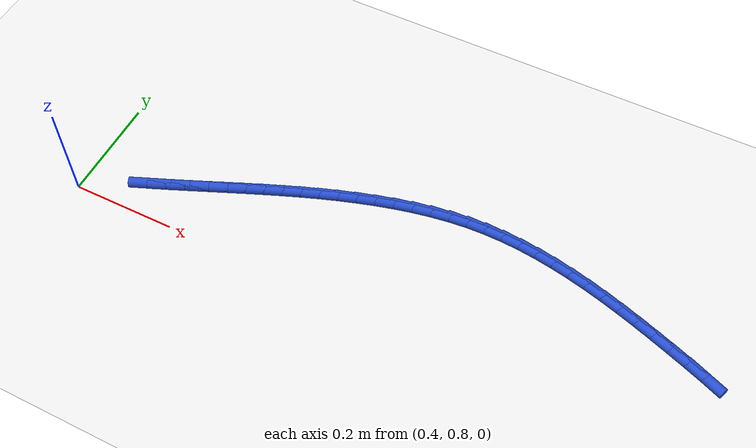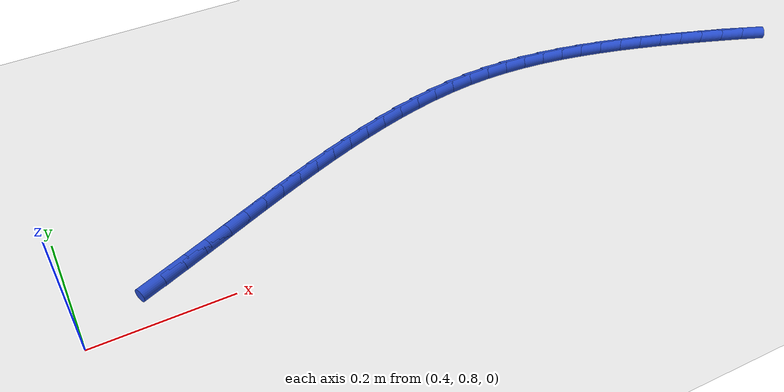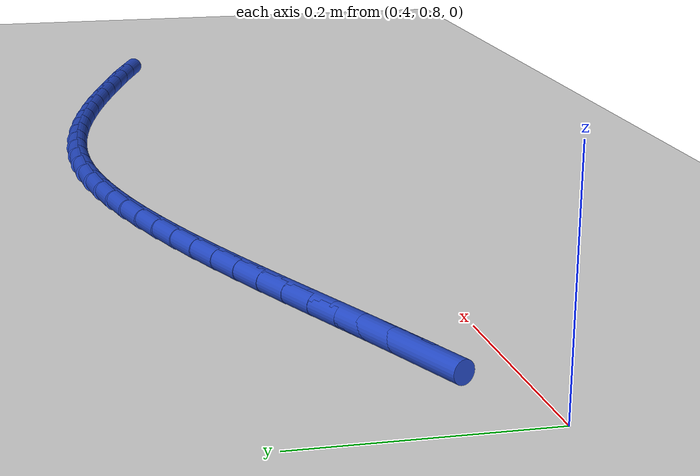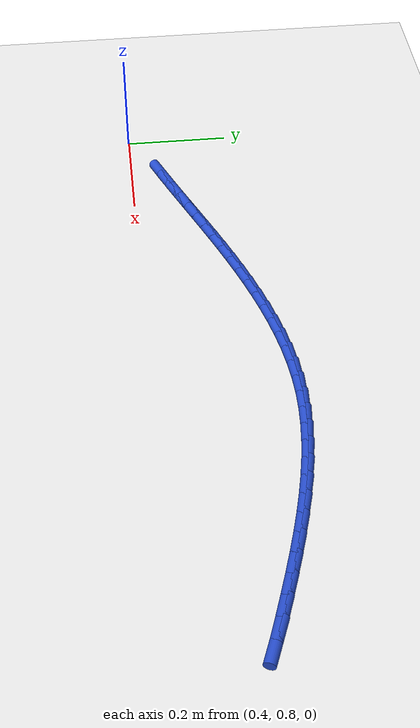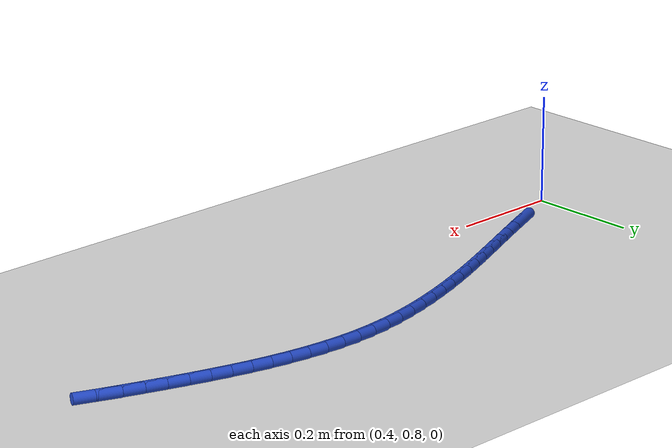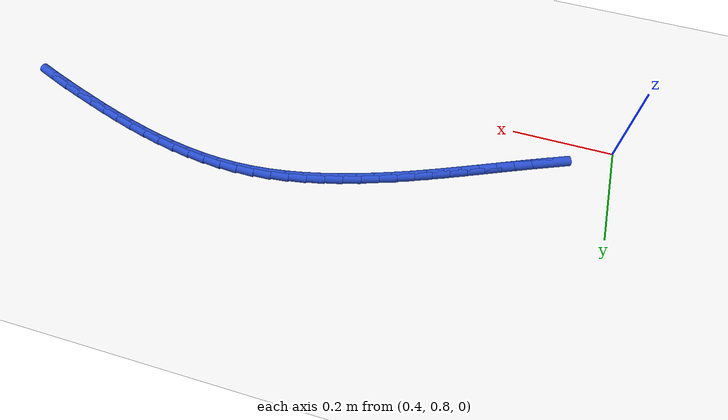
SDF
<sdf version="1.6">
 <world name="default">
  <model name="ground_plane">
   <static>1</static>
   <link name="link">
    <collision name="collision">
     <geometry><plane><normal>0 0 1</normal><size>100 100</size></plane></geometry>
     <surface><friction><ode><mu>100</mu><mu2>50</mu2></ode></friction></surface>
    </collision>
    <visual name="visual">
     <cast_shadows>0</cast_shadows>
     <geometry><plane><normal>0 0 1</normal><size>100 100</size></plane></geometry>
     <material>
      <script><uri>file://media/materials/scripts/gazebo.material</uri><name>Gazebo/WhiteGlow</name></script>
     </material>
    </visual>
   </link>
  </model>
  <model name="line">
   <link name="link_31">
    <pose>0.5207246611274198 0.8618990569873597 0.01 0 1.57 0.39394718605487383</pose>
    <collision name="collision">
     <geometry><cylinder><radius>0.01</radius><length>0.08</length></cylinder></geometry>
    </collision>
    <visual name="visual">
     <material>
      <script><name>Gazebo/Blue</name><uri>file://media/materials/scripts/gazebo.material</uri></script>
     </material>
     <geometry><cylinder><radius>0.01</radius><length>0.08</length></cylinder></geometry>
    </visual>
   </link>
   <link name="link_32">
    <pose>0.5536025665972087 0.8755656317871592 0.01 0 1.57 0.40204795960847106</pose>
    <collision name="collision">
     <geometry><cylinder><radius>0.01</radius><length>0.08</length></cylinder></geometry>
    </collision>
    <visual name="visual">
     <material>
      <script><name>Gazebo/Blue</name><uri>file://media/materials/scripts/gazebo.material</uri></script>
     </material>
     <geometry><cylinder><radius>0.01</radius><length>0.08</length></cylinder></geometry>
    </visual>
   </link>
   <link name="link_33">
    <pose>0.5861413446970477 0.8894014246340826 0.01 0 1.57 0.4068142637108959</pose>
    <collision name="collision">
     <geometry><cylinder><radius>0.01</radius><length>0.08</length></cylinder></geometry>
    </collision>
    <visual name="visual">
     <material>
      <script><name>Gazebo/Blue</name><uri>file://media/materials/scripts/gazebo.material</uri></script>
     </material>
     <geometry><cylinder><radius>0.01</radius><length>0.08</length></cylinder></geometry>
    </visual>
   </link>
   <link name="link_34">
    <pose>0.6184238940323642 0.9033103252896527 0.01 0 1.57 0.40817089300165244</pose>
    <collision name="collision">
     <geometry><cylinder><radius>0.01</radius><length>0.08</length></cylinder></geometry>
    </collision>
    <visual name="visual">
     <material>
      <script><name>Gazebo/Blue</name><uri>file://media/materials/scripts/gazebo.material</uri></script>
     </material>
     <geometry><cylinder><radius>0.01</radius><length>0.08</length></cylinder></geometry>
    </visual>
   </link>
   <link name="link_35">
    <pose>0.6505331132085849 0.9171962235153922 0.01 0 1.57 0.4060639736785271</pose>
    <collision name="collision">
     <geometry><cylinder><radius>0.01</radius><length>0.08</length></cylinder></geometry>
    </collision>
    <visual name="visual">
     <material>
      <script><name>Gazebo/Blue</name><uri>file://media/materials/scripts/gazebo.material</uri></script>
     </material>
     <geometry><cylinder><radius>0.01</radius><length>0.08</length></cylinder></geometry>
    </visual>
   </link>
   <link name="link_36">
    <pose>0.6825519008311373 0.9309630090728247 0.01 0 1.57 0.4004616030045988</pose>
    <collision name="collision">
     <geometry><cylinder><radius>0.01</radius><length>0.08</length></cylinder></geometry>
    </collision>
    <visual name="visual">
     <material>
      <script><name>Gazebo/Blue</name><uri>file://media/materials/scripts/gazebo.material</uri></script>
     </material>
     <geometry><cylinder><radius>0.01</radius><length>0.08</length></cylinder></geometry>
    </visual>
   </link>
   <link name="link_37">
    <pose>0.7145631555054484 0.944514571723473 0.01 0 1.57 0.39135538824786836</pose>
    <collision name="collision">
     <geometry><cylinder><radius>0.01</radius><length>0.08</length></cylinder></geometry>
    </collision>
    <visual name="visual">
     <material>
      <script><name>Gazebo/Blue</name><uri>file://media/materials/scripts/gazebo.material</uri></script>
     </material>
     <geometry><cylinder><radius>0.01</radius><length>0.08</length></cylinder></geometry>
    </visual>
   </link>
   <link name="link_38">
    <pose>0.7466497758369455 0.9577548012288601 0.01 0 1.57 0.3787629009597183</pose>
    <collision name="collision">
     <geometry><cylinder><radius>0.01</radius><length>0.08</length></cylinder></geometry>
    </collision>
    <visual name="visual">
     <material>
      <script><name>Gazebo/Blue</name><uri>file://media/materials/scripts/gazebo.material</uri></script>
     </material>
     <geometry><cylinder><radius>0.01</radius><length>0.08</length></cylinder></geometry>
    </visual>
   </link>
   <link name="link_39">
    <pose>0.7788946604310563 0.9705875873505094 0.01 0 1.57 0.3627309471428266</pose>
    <collision name="collision">
     <geometry><cylinder><radius>0.01</radius><length>0.08</length></cylinder></geometry>
    </collision>
    <visual name="visual">
     <material>
      <script><name>Gazebo/Blue</name><uri>file://media/materials/scripts/gazebo.material</uri></script>
     </material>
     <geometry><cylinder><radius>0.01</radius><length>0.08</length></cylinder></geometry>
    </visual>
   </link>
   <link name="link_40">
    <pose>0.8113807078932072 0.9829168198499435 0.01 0 1.57 0.34333942229906256</pose>
    <collision name="collision">
     <geometry><cylinder><radius>0.01</radius><length>0.08</length></cylinder></geometry>
    </collision>
    <visual name="visual">
     <material>
      <script><name>Gazebo/Blue</name><uri>file://media/materials/scripts/gazebo.material</uri></script>
     </material>
     <geometry><cylinder><radius>0.01</radius><length>0.08</length></cylinder></geometry>
    </visual>
   </link>
   <link name="link_41">
    <pose>0.8441908168288261 0.994646388488686 0.01 0 1.57 0.3207053779769576</pose>
    <collision name="collision">
     <geometry><cylinder><radius>0.01</radius><length>0.08</length></cylinder></geometry>
    </collision>
    <visual name="visual">
     <material>
      <script><name>Gazebo/Blue</name><uri>file://media/materials/scripts/gazebo.material</uri></script>
     </material>
     <geometry><cylinder><radius>0.01</radius><length>0.08</length></cylinder></geometry>
    </visual>
   </link>
   <link name="link_42">
    <pose>0.8774078858433402 1.00568018302826 0.01 0 1.57 0.29482234900867565</pose>
    <collision name="collision">
     <geometry><cylinder><radius>0.01</radius><length>0.08</length></cylinder></geometry>
    </collision>
    <visual name="visual">
     <material>
      <script><name>Gazebo/Blue</name><uri>file://media/materials/scripts/gazebo.material</uri></script>
     </material>
     <geometry><cylinder><radius>0.01</radius><length>0.08</length></cylinder></geometry>
    </visual>
   </link>
   <link name="link_43">
    <pose>0.9110902130092232 1.0159085686106593 0.01 0 1.57 0.26489532597117177</pose>
    <collision name="collision">
     <geometry><cylinder><radius>0.01</radius><length>0.08</length></cylinder></geometry>
    </collision>
    <visual name="visual">
     <material>
      <script><name>Gazebo/Blue</name><uri>file://media/materials/scripts/gazebo.material</uri></script>
     </material>
     <geometry><cylinder><radius>0.01</radius><length>0.08</length></cylinder></geometry>
    </visual>
   </link>
   <link name="link_44">
    <pose>0.945172915394058 1.0251541892342952 0.01 0 1.57 0.23040157071232448</pose>
    <collision name="collision">
     <geometry><cylinder><radius>0.01</radius><length>0.08</length></cylinder></geometry>
    </collision>
    <visual name="visual">
     <material>
      <script><name>Gazebo/Blue</name><uri>file://media/materials/scripts/gazebo.material</uri></script>
     </material>
     <geometry><cylinder><radius>0.01</radius><length>0.08</length></cylinder></geometry>
    </visual>
   </link>
   <link name="link_45">
    <pose>0.9795526351108578 1.0332185365460047 0.01 0 1.57 0.19098760197456974</pose>
    <collision name="collision">
     <geometry><cylinder><radius>0.01</radius><length>0.08</length></cylinder></geometry>
    </collision>
    <visual name="visual">
     <material>
      <script><name>Gazebo/Blue</name><uri>file://media/materials/scripts/gazebo.material</uri></script>
     </material>
     <geometry><cylinder><radius>0.01</radius><length>0.08</length></cylinder></geometry>
    </visual>
   </link>
   <link name="link_46">
    <pose>1.014126001371406 1.039903095099924 0.01 0 1.57 0.1462567880832043</pose>
    <collision name="collision">
     <geometry><cylinder><radius>0.01</radius><length>0.08</length></cylinder></geometry>
    </collision>
    <visual name="visual">
     <material>
      <script><name>Gazebo/Blue</name><uri>file://media/materials/scripts/gazebo.material</uri></script>
     </material>
     <geometry><cylinder><radius>0.01</radius><length>0.08</length></cylinder></geometry>
    </visual>
   </link>
   <link name="link_47">
    <pose>1.0487896433874848 1.045009349450188 0.01 0 1.57 0.09579198619954958</pose>
    <collision name="collision">
     <geometry><cylinder><radius>0.01</radius><length>0.08</length></cylinder></geometry>
    </collision>
    <visual name="visual">
     <material>
      <script><name>Gazebo/Blue</name><uri>file://media/materials/scripts/gazebo.material</uri></script>
     </material>
     <geometry><cylinder><radius>0.01</radius><length>0.08</length></cylinder></geometry>
    </visual>
   </link>
   <link name="link_48">
    <pose>1.0834401903708775 1.0483387841509324 0.01 0 1.57 0.03996815017787153</pose>
    <collision name="collision">
     <geometry><cylinder><radius>0.01</radius><length>0.08</length></cylinder></geometry>
    </collision>
    <visual name="visual">
     <material>
      <script><name>Gazebo/Blue</name><uri>file://media/materials/scripts/gazebo.material</uri></script>
     </material>
     <geometry><cylinder><radius>0.01</radius><length>0.08</length></cylinder></geometry>
    </visual>
   </link>
   <link name="link_49">
    <pose>1.117984678842834 1.0497201991141853 0.01 0 1.57 -0.015351555038040691</pose>
    <collision name="collision">
     <geometry><cylinder><radius>0.01</radius><length>0.08</length></cylinder></geometry>
    </collision>
    <visual name="visual">
     <material>
      <script><name>Gazebo/Blue</name><uri>file://media/materials/scripts/gazebo.material</uri></script>
     </material>
     <geometry><cylinder><radius>0.01</radius><length>0.08</length></cylinder></geometry>
    </visual>
   </link>
   <link name="link_50">
    <pose>1.1524098833289977 1.0491916771732033 0.01 0 1.57 -0.06700196114378378</pose>
    <collision name="collision">
     <geometry><cylinder><radius>0.01</radius><length>0.08</length></cylinder></geometry>
    </collision>
    <visual name="visual">
     <material>
      <script><name>Gazebo/Blue</name><uri>file://media/materials/scripts/gazebo.material</uri></script>
     </material>
     <geometry><cylinder><radius>0.01</radius><length>0.08</length></cylinder></geometry>
    </visual>
   </link>
   <link name="link_51">
    <pose>1.186739451871221 1.0468880805733638 0.01 0 1.57 -0.11460189729281117</pose>
    <collision name="collision">
     <geometry><cylinder><radius>0.01</radius><length>0.08</length></cylinder></geometry>
    </collision>
    <visual name="visual">
     <material>
      <script><name>Gazebo/Blue</name><uri>file://media/materials/scripts/gazebo.material</uri></script>
     </material>
     <geometry><cylinder><radius>0.01</radius><length>0.08</length></cylinder></geometry>
    </visual>
   </link>
   <link name="link_52">
    <pose>1.2209972321921216 1.0429447956485753 0.01 0 1.57 -0.15791448755461227</pose>
    <collision name="collision">
     <geometry><cylinder><radius>0.01</radius><length>0.08</length></cylinder></geometry>
    </collision>
    <visual name="visual">
     <material>
      <script><name>Gazebo/Blue</name><uri>file://media/materials/scripts/gazebo.material</uri></script>
     </material>
     <geometry><cylinder><radius>0.01</radius><length>0.08</length></cylinder></geometry>
    </visual>
   </link>
   <link name="link_53">
    <pose>1.2552070720143158 1.0374972087327463 0.01 0 1.57 -0.1968147613375584</pose>
    <collision name="collision">
     <geometry><cylinder><radius>0.01</radius><length>0.08</length></cylinder></geometry>
    </collision>
    <visual name="visual">
     <material>
      <script><name>Gazebo/Blue</name><uri>file://media/materials/scripts/gazebo.material</uri></script>
     </material>
     <geometry><cylinder><radius>0.01</radius><length>0.08</length></cylinder></geometry>
    </visual>
   </link>
   <link name="link_54">
    <pose>1.2893928190604216 1.0306807061597845 0.01 0 1.57 -0.23126761936936419</pose>
    <collision name="collision">
     <geometry><cylinder><radius>0.01</radius><length>0.08</length></cylinder></geometry>
    </collision>
    <visual name="visual">
     <material>
      <script><name>Gazebo/Blue</name><uri>file://media/materials/scripts/gazebo.material</uri></script>
     </material>
     <geometry><cylinder><radius>0.01</radius><length>0.08</length></cylinder></geometry>
    </visual>
   </link>
   <link name="link_55">
    <pose>1.323578321053056 1.022630674263598 0.01 0 1.57 -0.26130492769246394</pose>
    <collision name="collision">
     <geometry><cylinder><radius>0.01</radius><length>0.08</length></cylinder></geometry>
    </collision>
    <visual name="visual">
     <material>
      <script><name>Gazebo/Blue</name><uri>file://media/materials/scripts/gazebo.material</uri></script>
     </material>
     <geometry><cylinder><radius>0.01</radius><length>0.08</length></cylinder></geometry>
    </visual>
   </link>
   <link name="link_56">
    <pose>1.3577874257148355 1.013482499378095 0.01 0 1.57 -0.28700427061733946</pose>
    <collision name="collision">
     <geometry><cylinder><radius>0.01</radius><length>0.08</length></cylinder></geometry>
    </collision>
    <visual name="visual">
     <material>
      <script><name>Gazebo/Blue</name><uri>file://media/materials/scripts/gazebo.material</uri></script>
     </material>
     <geometry><cylinder><radius>0.01</radius><length>0.08</length></cylinder></geometry>
    </visual>
   </link>
   <link name="link_57">
    <pose>1.3920439807683773 1.0033715678371835 0.01 0 1.57 -0.3084707622308271</pose>
    <collision name="collision">
     <geometry><cylinder><radius>0.01</radius><length>0.08</length></cylinder></geometry>
    </collision>
    <visual name="visual">
     <material>
      <script><name>Gazebo/Blue</name><uri>file://media/materials/scripts/gazebo.material</uri></script>
     </material>
     <geometry><cylinder><radius>0.01</radius><length>0.08</length></cylinder></geometry>
    </visual>
   </link>
   <link name="link_58">
    <pose>1.4263718339362992 0.9924332659747714 0.01 0 1.57 -0.3258224332430204</pose>
    <collision name="collision">
     <geometry><cylinder><radius>0.01</radius><length>0.08</length></cylinder></geometry>
    </collision>
    <visual name="visual">
     <material>
      <script><name>Gazebo/Blue</name><uri>file://media/materials/scripts/gazebo.material</uri></script>
     </material>
     <geometry><cylinder><radius>0.01</radius><length>0.08</length></cylinder></geometry>
    </visual>
   </link>
   <link name="link_59">
    <pose>1.4607948329412177 0.9808029801247676 0.01 0 1.57 -0.3391791329569963</pose>
    <collision name="collision">
     <geometry><cylinder><radius>0.01</radius><length>0.08</length></cylinder></geometry>
    </collision>
    <visual name="visual">
     <material>
      <script><name>Gazebo/Blue</name><uri>file://media/materials/scripts/gazebo.material</uri></script>
     </material>
     <geometry><cylinder><radius>0.01</radius><length>0.08</length></cylinder></geometry>
    </visual>
   </link>
   <link name="link_60">
    <pose>1.4953368255057502 0.9686160966210792 0.01 0 1.57 -0.3489738257213363</pose>
    <collision name="collision">
     <geometry><cylinder><radius>0.01</radius><length>0.08</length></cylinder></geometry>
    </collision>
    <visual name="visual">
     <material>
      <script><name>Gazebo/Blue</name><uri>file://media/materials/scripts/gazebo.material</uri></script>
     </material>
     <geometry><cylinder><radius>0.01</radius><length>0.08</length></cylinder></geometry>
    </visual>
   </link>
   <link name="link_61">
    <pose>1.530012348448656 0.955998852021136 0.01 0 1.57 -0.3619204385596227</pose>
    <collision name="collision">
     <geometry><cylinder><radius>0.01</radius><length>0.08</length></cylinder></geometry>
    </collision>
    <visual name="visual">
     <material>
      <script><name>Gazebo/Blue</name><uri>file://media/materials/scripts/gazebo.material</uri></script>
     </material>
     <geometry><cylinder><radius>0.01</radius><length>0.08</length></cylinder></geometry>
    </visual>
   </link>
   <link name="link_62">
    <pose>1.564642933378126 0.9428878176723186 0.01 0 1.57 -0.38445339315399024</pose>
    <collision name="collision">
     <geometry><cylinder><radius>0.01</radius><length>0.08</length></cylinder></geometry>
    </collision>
    <visual name="visual">
     <material>
      <script><name>Gazebo/Blue</name><uri>file://media/materials/scripts/gazebo.material</uri></script>
     </material>
     <geometry><cylinder><radius>0.01</radius><length>0.08</length></cylinder></geometry>
    </visual>
   </link>
  </model>
 </world>
</sdf>
